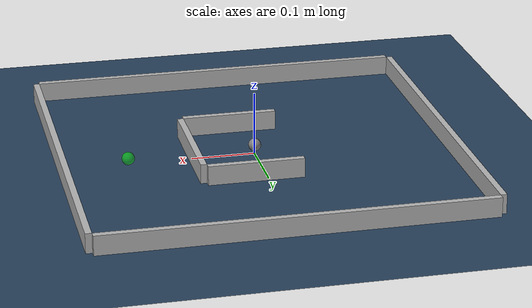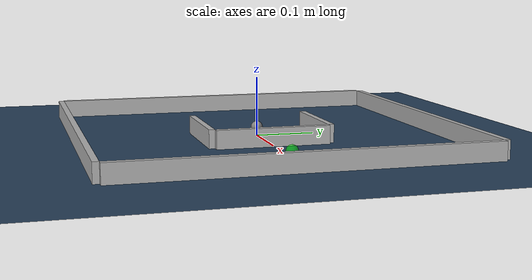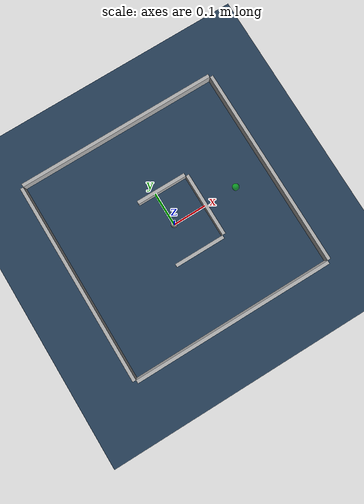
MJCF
<mujoco model="bugtrap_scene">
  <!-- Model that includes like lighting and a ground. -->
  <include file="bugtrap.xml"/>

  <statistic center="0 0 0" extent="0.9"/>

  <visual>
    <headlight diffuse="0.6 0.6 0.6" ambient="0.3 0.3 0.3" specular="0 0 0"/>
    <rgba haze="0.15 0.25 0.35 1"/>
  </visual>

  <asset>
    <texture type="skybox" builtin="gradient" rgb1="0.3 0.5 0.7" rgb2="0 0 0" width="512" height="3072"/>
    <texture type="2d" name="groundplane" builtin="checker" mark="edge" rgb1="0.2 0.3 0.4" rgb2="0.1 0.2 0.3"
      markrgb="0.8 0.8 0.8" width="300" height="300"/>
    <material name="groundplane" texture="groundplane" texuniform="true" texrepeat="5 5" reflectance="0.2"/>
  </asset>

  <worldbody>
    <light pos="0 0 1"/>
    <geom name="floor" contype="1" conaffinity="0" size="0 0 .125" type="plane" material="groundplane"/>
  </worldbody>

</mujoco>

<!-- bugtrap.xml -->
<mujoco model="bugtrap">

  <option timestep="0.01"
          iterations="10"
          ls_iterations="20"
          impratio="10">
    <flag contact="enable"
          eulerdamp="disable"/>
  </option>

  <default>
    <geom friction="5 0.5 0.5" condim="3"/>
  </default>

  <worldbody>
    <!-- Non-colliding mocap goal -->
    <body name="goal" mocap="true" pos="0.2 0.0 0.01" quat="1 0 0 0">
      <geom type="sphere" size=".01" contype="0" conaffinity="0" rgba="0 1 0 .5"/>
    </body>

    <camera name="top_view" pos="0 -0.635 0.635" xyaxes="1 0 0 0 0.7 0.7"/>

    <!-- ========== OUTER WALLS (boxes) ========== -->
    <!-- Left wall at x = -0.30 (center shifted outward by half-thickness 0.005) -->
    <body name="wall_left" pos="-0.305 0 0.01">
      <geom name="wall_left" type="box" size="0.005 0.30 0.02" mass="50"
            contype="2" conaffinity="0" rgba="0.7 0.7 0.7 1"/>
    </body>
    <!-- Right wall at x = 0.30 -->
    <body name="wall_right" pos="0.305 0 0.01">
      <geom name="wall_right" type="box" size="0.005 0.30 0.02" mass="50"
            contype="2" conaffinity="0" rgba="0.7 0.7 0.7 1"/>
    </body>

    <!-- Bottom wall at y = -0.30 -->
    <body name="wall_bottom" pos="0 -0.305 0.01">
      <geom name="wall_bottom" type="box" size="0.30 0.005 0.02" mass="50"
            contype="2" conaffinity="0" rgba="0.7 0.7 0.7 1"/>
    </body>

    <!-- Top wall at y = 0.30 -->
    <body name="wall_top" pos="0 0.305 0.01">
      <geom name="wall_top" type="box" size="0.30 0.005 0.02" mass="50"
            contype="2" conaffinity="0" rgba="0.7 0.7 0.7 1"/>
    </body>

    <!-- ========== INNER “U” WALLS (boxes) ========== -->
    <!-- Vertical inner leg at x = 0.10, spanning y ∈ [-0.10, 0.10] -->
    <body name="wall_inner_x" pos="0.100 0.000 0.01">
      <geom name="wall_inner_x" type="box" size="0.005 0.095 0.02" mass="25"
            contype="2" conaffinity="0" rgba="0.7 0.7 0.7 1"/>
    </body>

    <!-- Lower inner bar at y = -0.10, spanning x ∈ [-0.10, 0.10] -->
    <body name="wall_inner_y_minus" pos="0.02 -0.100 0.01">
      <geom name="wall_inner_y_minus" type="box" size="0.075 0.005 0.02" mass="25"
            contype="2" conaffinity="2" rgba="0.7 0.7 0.7 1"/>
    </body>

    <!-- Upper inner bar at y = 0.10 -->
    <body name="wall_inner_y_plus" pos="0.02 0.100 0.01">
      <geom name="wall_inner_y_plus" type="box" size="0.075 0.005 0.02" mass="25"
            contype="2" conaffinity="0" rgba="0.7 0.7 0.7 1"/>
    </body>

    <!-- Lower inner bar at y = -0.10, spanning x ∈ [-0.10, 0.10] -->

    <!-- Upper inner bar at y = 0.10 -->

    <!-- Moving particle -->
    <body name="pointmass" pos="0 0 .015" gravcomp="1">
      <camera name="cam0" pos="0 -0.635 0.635" xyaxes="1 0 0 0 0.7 0.7"/>
      <joint name="root_x" type="slide" axis="1 0 0"/>
      <joint name="root_y" type="slide" axis="0 1 0"/>

      <geom name="pointmass" type="sphere"
            size=".01" mass="0.15"
            margin="0.001"
            solimp="0.9 0.95 0.02"
            contype="2" conaffinity="2"/>
          <site name="s_touch" type="sphere" size=".01" rgba="1 0 0 .15"/>
          <site name="s_force" type="sphere" size=".01" rgba="0 0 1 .15"/>
      <site name="pointmass" pos="0 0 0" size="0.01"/>
    </body>
  </worldbody>

  <sensor>
    <touch name="sphere_touch" site="s_touch"/>
    <force name="sphere_force" site="s_force"/>
  </sensor>

  <actuator>
    <motor name="x_motor" joint="root_x" gear="1" ctrllimited="true" ctrlrange="-.5 .5"/>
    <motor name="y_motor" joint="root_y" gear="1" ctrllimited="true" ctrlrange="-.5 .5"/>
  </actuator>
</mujoco>
